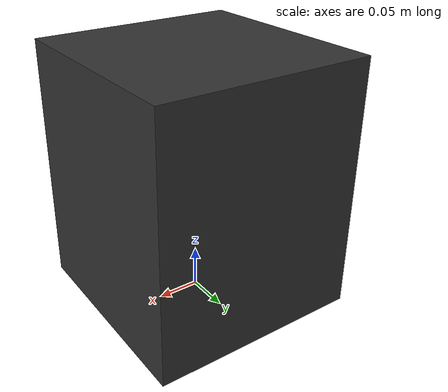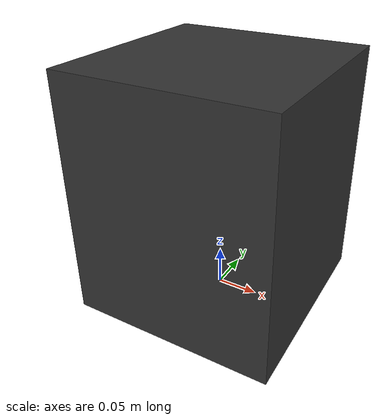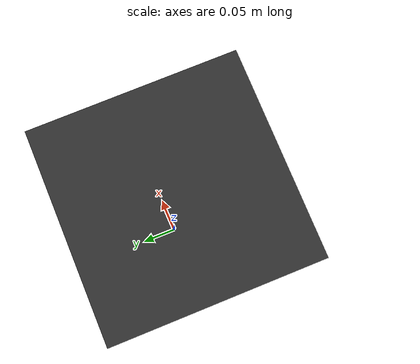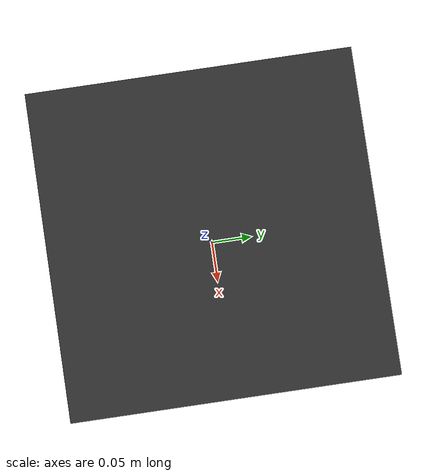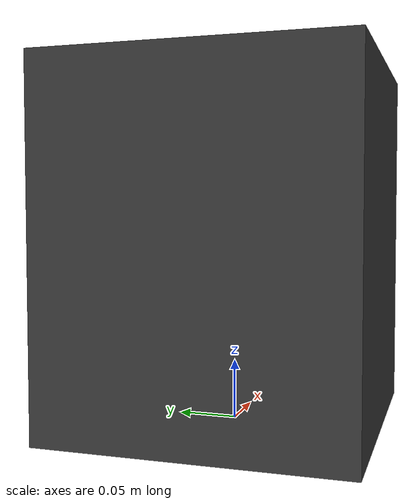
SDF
<?xml version="1.0"?>
<sdf version="1.9">
  <model name="robot_stand">
    <static>true</static>
    <!-- The robot base is at z = 0.3 m. The top is 1 mm lower, so the stand does not touch the base. -->
    <link name="stand">
      <pose>0 0 0.1495 0 0 0</pose>
      <collision name="collision">
        <geometry><box><size>0.25 0.25 0.299</size></box></geometry>
      </collision>
      <visual name="visual">
        <geometry><box><size>0.25 0.25 0.299</size></box></geometry>
        <material>
          <ambient>0.2 0.2 0.2 1</ambient>
          <diffuse>0.2 0.2 0.2 1</diffuse>
        </material>
      </visual>
    </link>
  </model>
</sdf>
